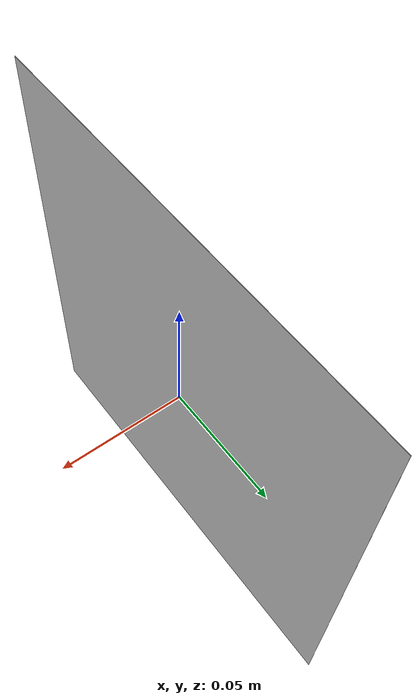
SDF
<?xml version='1.0'?>
<sdf version='1.6'>
  <model name='aruco_705'>
    <static>true</static>
    <link name='link'>
      <visual name='visual'>
        <pose>0 0 0 0 -1.5708 0</pose>
        <geometry>
          <plane>
            <normal>0 0 1</normal>
            <size>0.18 0.18</size>
          </plane>
        </geometry>
        <material>
          <script>
            <uri>model://puzzlebot_sim2/models/aruco_705/materials/scripts/aruco.material</uri>
            <name>aruco/705</name>
          </script>
        </material>
      </visual>
      <collision name='collision'>
        <pose>0 0 0 0 -1.5708 0</pose>
        <geometry>
          <box>
            <size>0.18 0.02 0.18</size>
          </box>
        </geometry>
      </collision>
    </link>
  </model>
</sdf>
